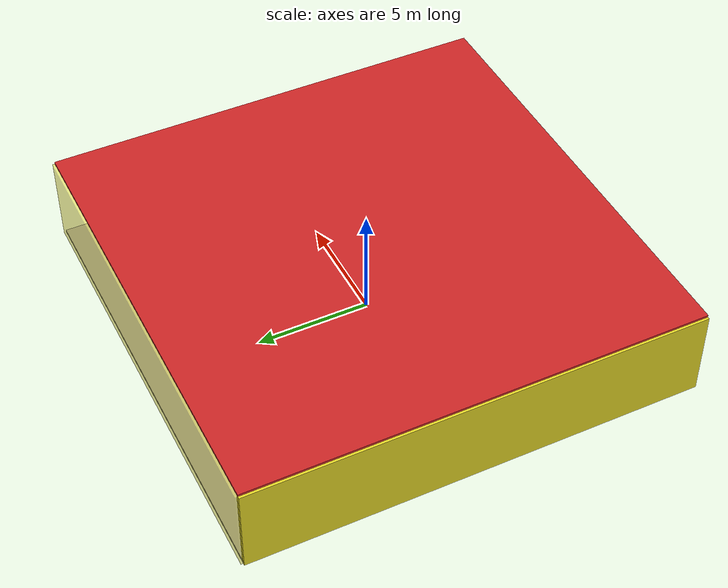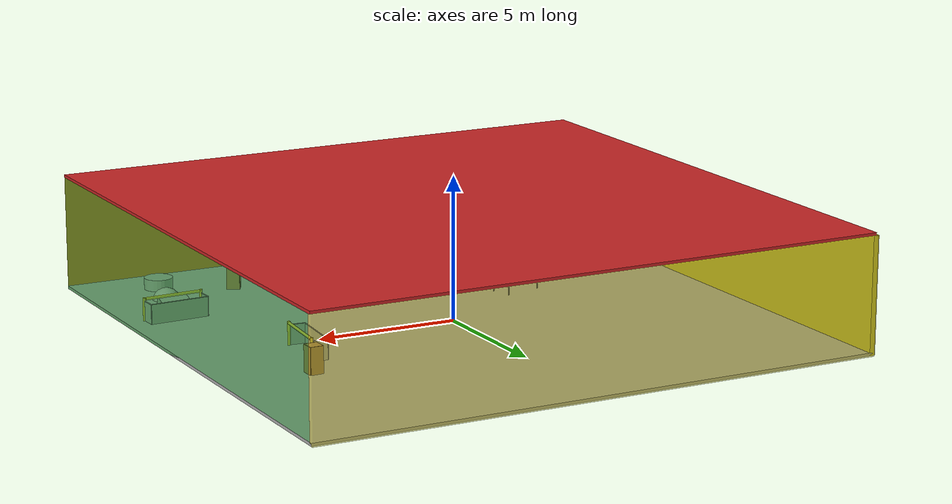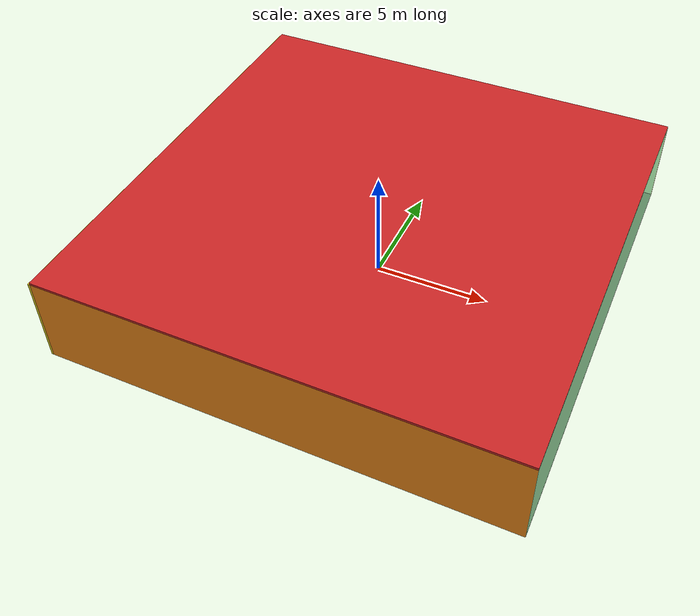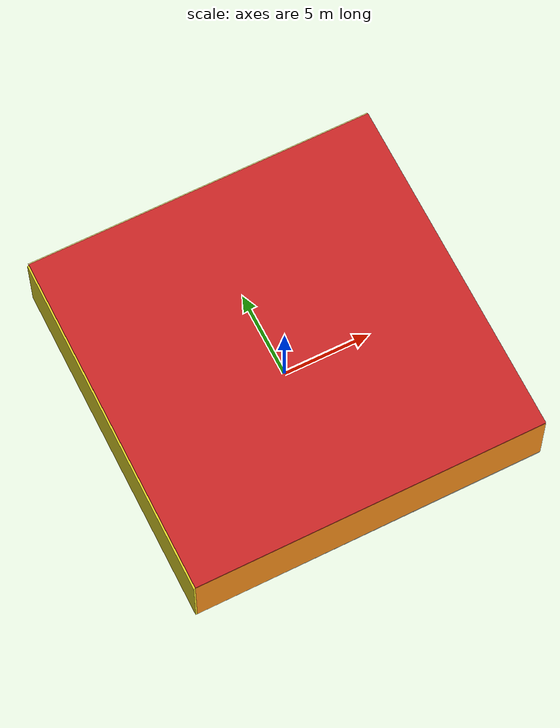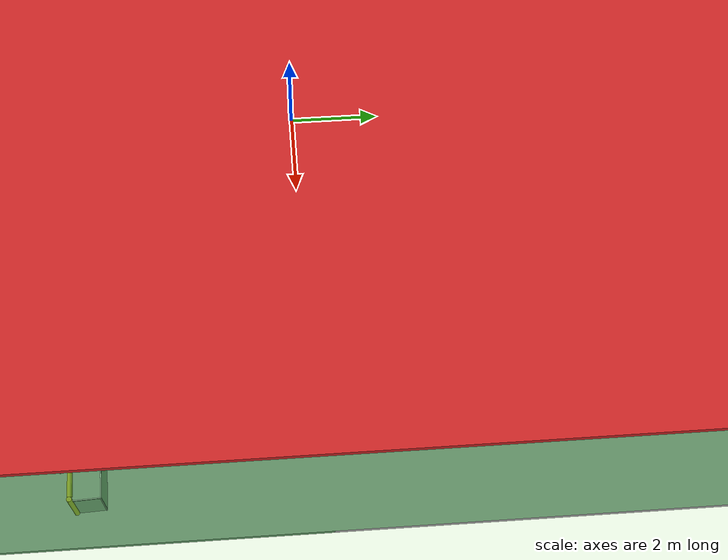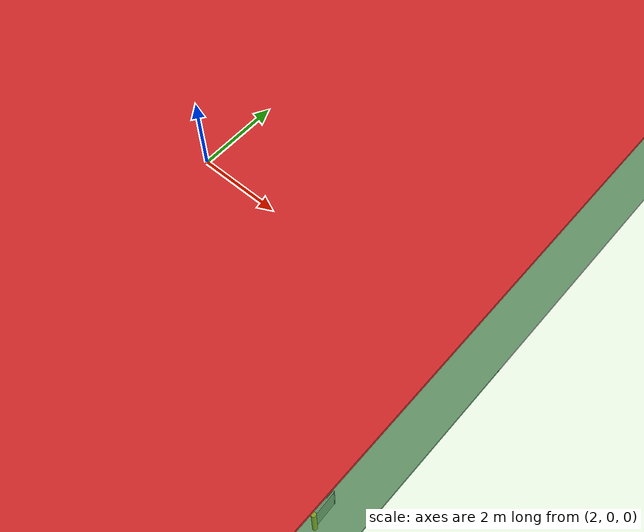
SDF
<sdf version="1.4">
 <world name="default">
  <physics type="ode">
   <max_step_size>0.001</max_step_size>
   <real_time_factor>1</real_time_factor>
   <real_time_update_rate>1000</real_time_update_rate>
   <gravity>0 0 -9.8</gravity>
  </physics>
  <scene><ambient>0.4 0.4 0.4 1</ambient><background>0.7 0.7 0.7 1</background><shadows>1</shadows></scene>
  <model name="Surrounding">
   <static>1</static>
   <link name="Ceiling">
    <collision name="Ceiling_Collision"><geometry><box><size>20 20 0.1</size></box></geometry></collision>
    <visual name="Ceiling_Visual">
     <geometry><box><size>20 20 0.1</size></box></geometry>
     <material>
      <script><uri>file://media/materials/scripts/gazebo.material</uri><name>Gazebo/RedBright</name></script>
     </material>
    </visual>
    <pose>0 0 4.05 0 0 0</pose>
   </link>
   <link name="Wall_South">
    <collision name="Wall_South_Collision">
     <geometry><box><size>20 0 4</size></box></geometry>
     <pose>0 0 2 0 -0 0</pose>
    </collision>
    <visual name="Wall_South_Visual">
     <pose>0 0 2 0 -0 0</pose>
     <geometry><box><size>20 0 4</size></box></geometry>
     <material>
      <script><uri>file://media/materials/scripts/gazebo.material</uri><name>Gazebo/Orange</name></script>
     </material>
    </visual>
    <velocity_decay><linear>0</linear><angular>0</angular></velocity_decay>
    <pose>0 -10 0 0 -0 0</pose>
   </link>
   <link name="Wall_East">
    <collision name="Wall_21_Collision">
     <geometry><box><size>20 0 4</size></box></geometry>
     <pose>0 0 2 0 -0 0</pose>
    </collision>
    <visual name="Wall_21_Visual">
     <pose>0 0 2 0 -0 0</pose>
     <geometry><box><size>20 0 4</size></box></geometry>
     <material>
      <script><uri>file://media/materials/scripts/gazebo.material</uri><name>Gazebo/GreenTransparent</name></script>
     </material>
    </visual>
    <velocity_decay><linear>0</linear><angular>0</angular></velocity_decay>
    <pose>10 0 0 0 -0 1.5708</pose>
   </link>
   <link name="Wall_North">
    <collision name="Wall_22_Collision">
     <geometry><box><size>20 0.2 4</size></box></geometry>
     <pose>0 0 2 0 -0 0</pose>
    </collision>
    <visual name="Wall_22_Visual">
     <pose>0 0 2 0 -0 0</pose>
     <geometry><box><size>20 0.2 4</size></box></geometry>
     <material>
      <script>
       <uri>file://media/materials/scripts/gazebo.material</uri>
       <name>Gazebo/YellowTransparent</name>
      </script>
     </material>
    </visual>
    <velocity_decay><linear>0</linear><angular>0</angular></velocity_decay>
    <pose>0 10 0 0 -0 0</pose>
   </link>
   <link name="Wall_West">
    <collision name="Wall_23_Collision">
     <geometry><box><size>20 0.2 4</size></box></geometry>
     <pose>0 0 2 0 -0 0</pose>
    </collision>
    <visual name="Wall_23_Visual">
     <pose>0 0 2 0 -0 0</pose>
     <geometry><box><size>20 0.2 4</size></box></geometry>
     <material>
      <script><uri>file://media/materials/scripts/gazebo.material</uri><name>Gazebo/YellowGlow</name></script>
     </material>
    </visual>
    <velocity_decay><linear>0</linear><angular>0</angular></velocity_decay>
    <pose>-10 0 0 0 0 -1.5708</pose>
   </link>
   <link name="Ground_link">
    <collision name="collision">
     <pose>0 0 .05 0 -0 0</pose>
     <geometry><box><size>20 20 0.1</size></box></geometry>
    </collision>
    <visual name="visual">
     <pose>0 0 .05 0 -0 0</pose>
     <geometry><box><size>20 20 0.1</size></box></geometry>
     <material>
      <script><uri>file://media/materials/scripts/gazebo.material</uri><name>Gazebo/JointAnchor</name></script>
     </material>
    </visual>
   </link>
   <static>1</static>
  </model>
  <spherical_coordinates>
   <surface_model>EARTH_WGS84</surface_model>
   <latitude_deg>0</latitude_deg>
   <longitude_deg>0</longitude_deg>
   <elevation>0</elevation>
   <heading_deg>0</heading_deg>
  </spherical_coordinates>
  <light name="lightball_0" type="diffuse">
   <diffuse>0.8 0.8 0.8 1</diffuse>
   <specular>0.2 0.2 0.2 1</specular>
   <attenuation>
    <range>100</range>
    <constant>0.7</constant>
    <linear>0.01</linear>
    <quadratic>0.001</quadratic>
   </attenuation>
   <direction>-0.5 0.1 -0.9</direction>
   <pose>7.65104796799 2.80985404578 2.93827275237 0 0 0</pose>
  </light>
  <light name="lightball_1" type="diffuse">
   <diffuse>0.8 0.8 0.8 1</diffuse>
   <specular>0.2 0.2 0.2 1</specular>
   <attenuation>
    <range>100</range>
    <constant>0.7</constant>
    <linear>0.01</linear>
    <quadratic>0.001</quadratic>
   </attenuation>
   <direction>-0.5 0.1 -0.9</direction>
   <pose>-1.60511990927 -6.7948860983 2.7699049013 0 0 0</pose>
  </light>
  <light name="lightball_2" type="diffuse">
   <diffuse>0.8 0.8 0.8 1</diffuse>
   <specular>0.2 0.2 0.2 1</specular>
   <attenuation>
    <range>100</range>
    <constant>0.7</constant>
    <linear>0.01</linear>
    <quadratic>0.001</quadratic>
   </attenuation>
   <direction>-0.5 0.1 -0.9</direction>
   <pose>0.12598382084 9.44021381682 3.86880314396 0 0 0</pose>
  </light>
  <light name="lightball_3" type="diffuse">
   <diffuse>0.8 0.8 0.8 1</diffuse>
   <specular>0.2 0.2 0.2 1</specular>
   <attenuation>
    <range>100</range>
    <constant>0.7</constant>
    <linear>0.01</linear>
    <quadratic>0.001</quadratic>
   </attenuation>
   <direction>-0.5 0.1 -0.9</direction>
   <pose>-4.29184582371 -3.52689833806 3.4112041711 0 0 0</pose>
  </light>
  <light name="lightball_4" type="diffuse">
   <diffuse>0.8 0.8 0.8 1</diffuse>
   <specular>0.2 0.2 0.2 1</specular>
   <attenuation>
    <range>100</range>
    <constant>0.7</constant>
    <linear>0.01</linear>
    <quadratic>0.001</quadratic>
   </attenuation>
   <direction>-0.5 0.1 -0.9</direction>
   <pose>-5.70826386226 0.483161637064 2.9633613499 0 0 0</pose>
  </light>
  <light name="lightball_5" type="diffuse">
   <diffuse>0.8 0.8 0.8 1</diffuse>
   <specular>0.2 0.2 0.2 1</specular>
   <attenuation>
    <range>100</range>
    <constant>0.7</constant>
    <linear>0.01</linear>
    <quadratic>0.001</quadratic>
   </attenuation>
   <direction>-0.5 0.1 -0.9</direction>
   <pose>-5.97200012121 -6.39431455262 0.72897501232 0 0 0</pose>
  </light>
  <light name="lightball_6" type="diffuse">
   <diffuse>0.8 0.8 0.8 1</diffuse>
   <specular>0.2 0.2 0.2 1</specular>
   <attenuation>
    <range>100</range>
    <constant>0.7</constant>
    <linear>0.01</linear>
    <quadratic>0.001</quadratic>
   </attenuation>
   <direction>-0.5 0.1 -0.9</direction>
   <pose>-3.06469692279 6.17042052911 2.28748630944 0 0 0</pose>
  </light>
  <light name="lightball_7" type="diffuse">
   <diffuse>0.8 0.8 0.8 1</diffuse>
   <specular>0.2 0.2 0.2 1</specular>
   <attenuation>
    <range>100</range>
    <constant>0.7</constant>
    <linear>0.01</linear>
    <quadratic>0.001</quadratic>
   </attenuation>
   <direction>-0.5 0.1 -0.9</direction>
   <pose>2.84830224716 -8.26289054064 3.44338059469 0 0 0</pose>
  </light>
  <light name="lightball_8" type="diffuse">
   <diffuse>0.8 0.8 0.8 1</diffuse>
   <specular>0.2 0.2 0.2 1</specular>
   <attenuation>
    <range>100</range>
    <constant>0.7</constant>
    <linear>0.01</linear>
    <quadratic>0.001</quadratic>
   </attenuation>
   <direction>-0.5 0.1 -0.9</direction>
   <pose>-8.04943912805 4.06216767147 3.38514690623 0 0 0</pose>
  </light>
  <light name="lightball_9" type="diffuse">
   <diffuse>0.8 0.8 0.8 1</diffuse>
   <specular>0.2 0.2 0.2 1</specular>
   <attenuation>
    <range>100</range>
    <constant>0.7</constant>
    <linear>0.01</linear>
    <quadratic>0.001</quadratic>
   </attenuation>
   <direction>-0.5 0.1 -0.9</direction>
   <pose>-1.02682711156 -8.16274316954 1.33426760655 0 0 0</pose>
  </light>
  <light name="lightball_10" type="diffuse">
   <diffuse>0.8 0.8 0.8 1</diffuse>
   <specular>0.2 0.2 0.2 1</specular>
   <attenuation>
    <range>100</range>
    <constant>0.7</constant>
    <linear>0.01</linear>
    <quadratic>0.001</quadratic>
   </attenuation>
   <direction>-0.5 0.1 -0.9</direction>
   <pose>-2.81917663201 6.60066315764 2.76880744546 0 0 0</pose>
  </light>
  <light name="lightball_11" type="diffuse">
   <diffuse>0.8 0.8 0.8 1</diffuse>
   <specular>0.2 0.2 0.2 1</specular>
   <attenuation>
    <range>100</range>
    <constant>0.7</constant>
    <linear>0.01</linear>
    <quadratic>0.001</quadratic>
   </attenuation>
   <direction>-0.5 0.1 -0.9</direction>
   <pose>-4.83435227079 6.86873245423 1.49438605462 0 0 0</pose>
  </light>
  <light name="lightball_12" type="diffuse">
   <diffuse>0.8 0.8 0.8 1</diffuse>
   <specular>0.2 0.2 0.2 1</specular>
   <attenuation>
    <range>100</range>
    <constant>0.7</constant>
    <linear>0.01</linear>
    <quadratic>0.001</quadratic>
   </attenuation>
   <direction>-0.5 0.1 -0.9</direction>
   <pose>-1.87645855494 -9.02712291649 1.73556297806 0 0 0</pose>
  </light>
  <light name="lightball_13" type="diffuse">
   <diffuse>0.8 0.8 0.8 1</diffuse>
   <specular>0.2 0.2 0.2 1</specular>
   <attenuation>
    <range>100</range>
    <constant>0.7</constant>
    <linear>0.01</linear>
    <quadratic>0.001</quadratic>
   </attenuation>
   <direction>-0.5 0.1 -0.9</direction>
   <pose>9.48632374037 6.67084866034 0.636480512444 0 0 0</pose>
  </light>
  <include><uri>model://cabinet</uri><pose>-5.58592502801 -7.85763152556 0 0 0 0.942995359618</pose></include>
  <include><uri>model://table</uri><pose>-3.61397452859 -2.20349013466 0 0 0 0.254174380282</pose></include>
  <include><uri>model://cabinet</uri><pose>4.98059858682 -7.04541841635 0 0 0 2.65743032797</pose></include>
  <include>
   <uri>model://textured_shapes</uri>
   <pose>7.61895122322 -6.77338581299 0 0 0 2.93676845922</pose>
  </include>
  <include>
   <uri>model://robocup_3Dsim_goal</uri>
   <pose>8.27409237677 -4.60496283735 0 0 0 1.61498328734</pose>
  </include>
  <include>
   <uri>model://robocup_3Dsim_goal</uri>
   <pose>6.34518421112 1.40855937767 0 0 0 3.06104397613</pose>
  </include>
  <include><uri>model://cabinet</uri><pose>6.88271802055 3.58401992059 0 0 0 0.0291189559056</pose></include>
 </world>
</sdf>

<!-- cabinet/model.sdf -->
<sdf version="1.5">
  <model name="cabinet">
    <static>true</static>
    <link name="cabinet_bottom_plate">
      <inertial>
        <pose>0 0 -1 0 0 0</pose>
        <inertia>
          <ixx>2.050000</ixx>
          <ixy>0</ixy>
          <ixz>0</ixz>
          <iyy>2.050000</iyy>
          <iyz>0</iyz>
          <izz>2.050000</izz>
        </inertia>
        <mass>25.000000</mass>
      </inertial>
      <collision name="cabinet_bottom_plate_geom">
        <pose>0 0 0.010000 0 0 0</pose>
        <geometry>
          <box>
            <size>0.450000 0.450000 0.020000</size>
          </box>
        </geometry>
      </collision>
      <visual name="cabinet_bottom_plate_geom_visual">
        <pose>0 0 0.010000 0 0 0</pose>
        <geometry>
          <box>
            <size>0.450000 0.450000 0.020000</size>
          </box>
        </geometry>
        <material>
          <script>
            <uri>model://media/materials/scripts/gazebo.material</uri>
            <name>Gazebo/Wood</name>
          </script>
        </material>
      </visual>
      <collision name="cabinet_bottom_plate_geom_cabinet_back_plate">
        <pose>0.235000 0 0.510000 0 0 0</pose>
        <geometry>
          <box>
            <size>0.020000 0.450000 1.020000</size>
          </box>
        </geometry>
      </collision>
      <visual name="cabinet_bottom_plate_geom_cabinet_back_plate_visual">
        <pose>0.235000 0 0.510000 0 0 0</pose>
        <geometry>
          <box>
            <size>0.020000 0.450000 1.020000</size>
          </box>
        </geometry>
        <material>
          <script>
            <uri>model://media/materials/scripts/gazebo.material</uri>
            <name>Gazebo/Wood</name>
          </script>
        </material>
      </visual>
      <collision name="cabinet_bottom_plate_geom_cabinet_left_plate">
        <pose>0 0.235000 0.510000 0 0 0</pose>
        <geometry>
          <box>
            <size>0.450000 0.020000 1.020000</size>
          </box>
        </geometry>
      </collision>
      <visual name="cabinet_bottom_plate_geom_cabinet_left_plate_visual">
        <pose>0 0.235000 0.510000 0 0 0</pose>
        <geometry>
          <box>
            <size>0.450000 0.020000 1.020000</size>
          </box>
        </geometry>
        <material>
          <script>
            <uri>model://media/materials/scripts/gazebo.material</uri>
            <name>Gazebo/Wood</name>
          </script>
        </material>
      </visual>
      <collision name="cabinet_bottom_plate_geom_cabinet_middle_plate">
        <pose>0 0 0.510000 0 0 0</pose>
        <geometry>
          <box>
            <size>0.450000 0.450000 0.020000</size>
          </box>
        </geometry>
      </collision>
      <visual name="cabinet_bottom_plate_geom_cabinet_middle_plate_visual">
        <pose>0 0 0.510000 0 0 0</pose>
        <geometry>
          <box>
            <size>0.450000 0.450000 0.020000</size>
          </box>
        </geometry>
        <material>
          <script>
            <uri>model://media/materials/scripts/gazebo.material</uri>
            <name>Gazebo/Wood</name>
          </script>
        </material>
      </visual>
      <collision name="cabinet_bottom_plate_geom_cabinet_right_plate">
        <pose>0 -0.235000 0.510000 0 0 0</pose>
        <geometry>
          <box>
            <size>0.450000 0.020000 1.020000</size>
          </box>
        </geometry>
      </collision>
      <visual name="cabinet_bottom_plate_geom_cabinet_right_plate_visual">
        <pose>0 -0.235000 0.510000 0 0 0</pose>
        <geometry>
          <box>
            <size>0.450000 0.020000 1.020000</size>
          </box>
        </geometry>
        <material>
          <script>
            <uri>model://media/materials/scripts/gazebo.material</uri>
            <name>Gazebo/Wood</name>
          </script>
        </material>
      </visual>
      <collision name="cabinet_bottom_plate_geom_cabinet_top_plate">
        <pose>0 0 1.010000 0 0 0</pose>
        <geometry>
          <box>
            <size>0.450000 0.450000 0.020000</size>
          </box>
        </geometry>
      </collision>
      <visual name="cabinet_bottom_plate_geom_cabinet_top_plate_visual">
        <pose>0 0 1.010000 0 0 0</pose>
        <geometry>
          <box>
            <size>0.450000 0.450000 0.020000</size>
          </box>
        </geometry>
        <material>
          <script>
            <uri>model://media/materials/scripts/gazebo.material</uri>
            <name>Gazebo/Wood</name>
          </script>
        </material>
      </visual>
    </link>
  </model>
</sdf>

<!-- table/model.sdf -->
<sdf version="1.5">
  <model name="table">
    <static>true</static>
    <link name="link">
      <collision name="surface">
        <pose>0 0 1.0 0 0 0</pose>
        <geometry>
          <box>
            <size>1.5 0.8 0.03</size>
          </box>
        </geometry>
        <surface>
          <friction>
            <ode>
              <mu>0.6</mu>
              <mu2>0.6</mu2>
            </ode>
          </friction>
        </surface>
      </collision>
      <visual name="visual1">
        <pose>0 0 1.0 0 0 0</pose>
        <geometry>
          <box>
            <size>1.5 0.8 0.03</size>
          </box>
        </geometry>
        <material>
          <script>
            <uri>model://media/materials/scripts/gazebo.material</uri>
            <name>Gazebo/Wood</name>
          </script>
        </material>
      </visual>
      <collision name="front_left_leg">
        <pose>0.68 0.38 0.5 0 0 0</pose>
        <geometry>
          <cylinder>
            <radius>0.02</radius>
            <length>1.0</length>
          </cylinder>
        </geometry>
      </collision>
      <visual name="front_left_leg">
        <pose>0.68 0.38 0.5 0 0 0</pose>
        <geometry>
          <cylinder>
            <radius>0.02</radius>
            <length>1.0</length>
          </cylinder>
        </geometry>
        <material>
          <script>
            <uri>model://media/materials/scripts/gazebo.material</uri>
            <name>Gazebo/Grey</name>
          </script>
        </material>
      </visual>
      <collision name="front_right_leg">
        <pose>0.68 -0.38 0.5 0 0 0</pose>
        <geometry>
          <cylinder>
            <radius>0.02</radius>
            <length>1.0</length>
          </cylinder>
        </geometry>
      </collision>
      <visual name="front_right_leg">
        <pose>0.68 -0.38 0.5 0 0 0</pose>
        <geometry>
          <cylinder>
            <radius>0.02</radius>
            <length>1.0</length>
          </cylinder>
        </geometry>
        <material>
          <script>
            <uri>model://media/materials/scripts/gazebo.material</uri>
            <name>Gazebo/Grey</name>
          </script>
        </material>
      </visual>
      <collision name="back_right_leg">
        <pose>-0.68 -0.38 0.5 0 0 0</pose>
        <geometry>
          <cylinder>
            <radius>0.02</radius>
            <length>1.0</length>
          </cylinder>
        </geometry>
      </collision>
      <visual name="back_right_leg">
        <pose>-0.68 -0.38 0.5 0 0 0</pose>
        <geometry>
          <cylinder>
            <radius>0.02</radius>
            <length>1.0</length>
          </cylinder>
        </geometry>
        <material>
          <script>
            <uri>model://media/materials/scripts/gazebo.material</uri>
            <name>Gazebo/Grey</name>
          </script>
        </material>
      </visual>
      <collision name="back_left_leg">
        <pose>-0.68 0.38 0.5 0 0 0</pose>
        <geometry>
          <cylinder>
            <radius>0.02</radius>
            <length>1.0</length>
          </cylinder>
        </geometry>
      </collision>
      <visual name="back_left_leg">
        <pose>-0.68 0.38 0.5 0 0 0</pose>
        <geometry>
          <cylinder>
            <radius>0.02</radius>
            <length>1.0</length>
          </cylinder>
        </geometry>
        <material>
          <script>
            <uri>model://media/materials/scripts/gazebo.material</uri>
            <name>Gazebo/Grey</name>
          </script>
        </material>
      </visual>
    </link>
  </model>
</sdf>

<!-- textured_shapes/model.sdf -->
<sdf version="1.6">
  <model name="textured_shapes">
    <pose>0 0 0.5 0 0 0</pose>
    <link name="box">
      <pose>0 -1.5 0 0 0 0</pose>
      <collision name="collision">
        <geometry>
          <box>
            <size>1 1 1</size>
          </box>
        </geometry>
      </collision>
      <visual name="visual">
        <geometry>
          <box>
            <size>1 1 1</size>
          </box>
        </geometry>
        <material>
          <script>
            <uri>model://../model_source/models/textured_shapes/materials/scripts</uri>
            <uri>model://../model_source/models/textured_shapes/materials/textures</uri>
            <name>TexturedShape/Squares</name>
          </script>
        </material>
      </visual>
    </link>
    <link name="sphere">
      <collision name="collision">
        <geometry>
          <sphere>
            <radius>0.5</radius>
          </sphere>
        </geometry>
      </collision>
      <visual name="visual">
        <geometry>
          <sphere>
            <radius>0.5</radius>
          </sphere>
        </geometry>
        <material>
          <script>
            <uri>model://../model_source/models/textured_shapes/materials/scripts</uri>
            <uri>model://../model_source/models/textured_shapes/materials/textures</uri>
            <name>TexturedShape/Squares</name>
          </script>
        </material>
      </visual>
    </link>
    <link name="cylinder">
      <pose>0 1.5 0 0 0 0</pose>
      <collision name="collision">
        <geometry>
          <cylinder>
            <radius>0.5</radius>
            <length>1</length>
          </cylinder>
        </geometry>
      </collision>
      <visual name="visual">
        <geometry>
          <cylinder>
            <radius>0.5</radius>
            <length>1</length>
          </cylinder>
        </geometry>
        <material>
          <script>
            <uri>model://../model_source/models/textured_shapes/materials/scripts</uri>
            <uri>model://../model_source/models/textured_shapes/materials/textures</uri>
            <name>TexturedShape/Squares</name>
          </script>
        </material>
      </visual>
    </link>
  </model>
</sdf>

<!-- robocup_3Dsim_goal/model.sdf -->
<sdf version="1.5">
  <model name="robocup_3d_goal">
    <static>true</static>
    <link name="left_post">
      <pose>0 1.05 0.45 0 0 0</pose>
      <collision name="collision">
        <geometry>
          <cylinder>
            <radius>0.05</radius>
            <length>0.9</length>
          </cylinder>
        </geometry>
      </collision>
      <visual name="visual">
        <geometry>
          <cylinder>
            <radius>0.05</radius>
            <length>0.9</length>
          </cylinder>
        </geometry>
        <material>
          <script>
            <uri>file://media/materials/scripts/gazebo.material</uri>
            <name>Gazebo/ZincYellow</name>
          </script>
        </material>
      </visual>
    </link>
    <link name="left_support_horiz_lower">
      <pose>0.30 1.05 0.01 0 0 0</pose>
      <collision name="collision">
        <geometry>
          <box>
            <size>0.50 0.02 0.02</size>
          </box>
        </geometry>
      </collision>
      <visual name="visual">
        <geometry>
          <box>
            <size>0.50 0.02 0.02</size>
          </box>
        </geometry>
        <material>
          <script>
            <uri>file://media/materials/scripts/gazebo.material</uri>
            <name>Gazebo/White</name>
          </script>
        </material>
      </visual>
    </link>
    <link name="left_support_horiz_upper">
      <pose>0.30 1.05 0.79 0 0 0</pose>
      <collision name="collision">
        <geometry>
          <box>
            <size>0.50 0.02 0.02</size>
          </box>
        </geometry>
      </collision>
      <visual name="visual">
        <geometry>
          <box>
            <size>0.50 0.02 0.02</size>
          </box>
        </geometry>
        <material>
          <script>
            <uri>file://media/materials/scripts/gazebo.material</uri>
            <name>Gazebo/White</name>
          </script>
        </material>
      </visual>
    </link>
    <link name="left_support_vertical">
      <pose>0.56 1.05 0.4 0 1.5708 0</pose>
      <collision name="collision">
        <geometry>
          <box>
            <size>0.80 0.02 0.02</size>
          </box>
        </geometry>
      </collision>
      <visual name="visual">
        <geometry>
          <box>
            <size>0.80 0.02 0.02</size>
          </box>
        </geometry>
        <material>
          <script>
            <uri>file://media/materials/scripts/gazebo.material</uri>
            <name>Gazebo/White</name>
          </script>
        </material>
      </visual>
    </link>
    <link name="right_support_horiz_lower">
      <pose>0.30 -1.05 0.01 0 0 0</pose>
      <collision name="collision">
        <geometry>
          <box>
            <size>0.50 0.02 0.02</size>
          </box>
        </geometry>
      </collision>
      <visual name="visual">
        <geometry>
          <box>
            <size>0.50 0.02 0.02</size>
          </box>
        </geometry>
        <material>
          <script>
            <uri>file://media/materials/scripts/gazebo.material</uri>
            <name>Gazebo/White</name>
          </script>
        </material>
      </visual>
    </link>
    <link name="right_support_horiz_upper">
      <pose>0.30 -1.05 0.79 0 0 0</pose>
      <collision name="collision">
        <geometry>
          <box>
            <size>0.50 0.02 0.02</size>
          </box>
        </geometry>
      </collision>
      <visual name="visual">
        <geometry>
          <box>
            <size>0.50 0.02 0.02</size>
          </box>
        </geometry>
        <material>
          <script>
            <uri>file://media/materials/scripts/gazebo.material</uri>
            <name>Gazebo/White</name>
          </script>
        </material>
      </visual>
    </link>
    <link name="right_support_vertical">
      <pose>0.56 -1.05 0.4 0 1.5708 0</pose>
      <collision name="collision">
        <geometry>
          <box>
            <size>0.80 0.02 0.02</size>
          </box>
        </geometry>
      </collision>
      <visual name="visual">
        <geometry>
          <box>
            <size>0.80 0.02 0.02</size>
          </box>
        </geometry>
        <material>
          <script>
            <uri>file://media/materials/scripts/gazebo.material</uri>
            <name>Gazebo/White</name>
          </script>
        </material>
      </visual>
    </link>
    <link name="center_support_horiz_lower">
      <pose>0.56 0 0.01 0 1.5708 0</pose>
      <collision name="collision">
        <geometry>
          <box>
            <size>0.02 2.08 0.02</size>
          </box>
        </geometry>
      </collision>
      <visual name="visual">
        <geometry>
          <box>
            <size>0.02 2.08 0.02</size>
          </box>
        </geometry>
        <material>
          <script>
            <uri>file://media/materials/scripts/gazebo.material</uri>
            <name>Gazebo/White</name>
          </script>
        </material>
      </visual>
    </link>
    <link name="center_support_horiz_upper">
      <pose>0.56 0 0.79 0 1.5708 0</pose>
      <collision name="collision">
        <geometry>
          <box>
            <size>0.02 2.08 0.02</size>
          </box>
        </geometry>
      </collision>
      <visual name="visual">
        <geometry>
          <box>
            <size>0.02 2.08 0.02</size>
          </box>
        </geometry>
        <material>
          <script>
            <uri>file://media/materials/scripts/gazebo.material</uri>
            <name>Gazebo/White</name>
          </script>
        </material>
      </visual>
    </link>
    <link name="right_post">
      <pose>0 -1.05 0.45 0 0 0</pose>
      <collision name="collision">
        <geometry>
          <cylinder>
            <radius>0.05</radius>
            <length>0.9</length>
          </cylinder>
        </geometry>
      </collision>
      <visual name="visual">
        <geometry>
          <cylinder>
            <radius>0.05</radius>
            <length>0.9</length>
          </cylinder>
        </geometry>
        <material>
          <script>
            <uri>file://media/materials/scripts/gazebo.material</uri>
            <name>Gazebo/ZincYellow</name>
          </script>
        </material>
      </visual>
    </link>
    <link name="crossbar">
      <pose>0 0 0.85 1.57 1.57 0</pose>
      <collision name="collision">
        <geometry>
          <cylinder>
            <radius>0.05</radius>
            <length>2.0</length>
          </cylinder>
        </geometry>
      </collision>
      <visual name="visual">
        <geometry>
          <cylinder>
            <radius>0.05</radius>
            <length>2.0</length>
          </cylinder>
        </geometry>
        <material>
          <script>
            <uri>file://media/materials/scripts/gazebo.material</uri>
            <name>Gazebo/ZincYellow</name>
          </script>
        </material>
      </visual>
    </link>
    <link name="center_net">
      <pose>0.56 0 0.40 0 0 0</pose>
      <collision name="collision">
        <geometry>
          <box>
            <size>0.01 2.1 0.80</size>
          </box>
        </geometry>
      </collision>
      <visual name="visual">
        <geometry>
          <box>
            <size>0.01 2.1 0.80</size>
          </box>
        </geometry>
        <material>
          <script>
            <uri>model://../model_source/models/robocup09_spl_field/materials/scripts/</uri>
            <uri>model://../model_source/models/robocup09_spl_field/materials/textures/</uri>
            <name>RoboCup/Net</name>
          </script>
        </material>
      </visual>
    </link>
    <link name="left_net">
      <pose>0.30 1.05 0.40 0 0 0</pose>
      <collision name="collision">
        <geometry>
          <box>
            <size>0.50 0.01 0.76</size>
          </box>
        </geometry>
      </collision>
      <visual name="visual">
        <geometry>
          <box>
            <size>0.50 0.01 0.76</size>
          </box>
        </geometry>
        <material>
          <script>
            <uri>model://../model_source/models/robocup09_spl_field/materials/scripts/</uri>
            <uri>model://../model_source/models/robocup09_spl_field/materials/textures/</uri>
            <name>RoboCup/Net</name>
          </script>
        </material>
      </visual>
    </link>
    <link name="right_net">
      <pose>0.30 -1.05 0.40 0 0 0</pose>
      <collision name="collision">
        <geometry>
          <box>
            <size>0.50 0.01 0.76</size>
          </box>
        </geometry>
      </collision>
      <visual name="visual">
        <geometry>
          <box>
            <size>0.50 0.01 0.76</size>
          </box>
        </geometry>
        <material>
          <script>
            <uri>model://../model_source/models/robocup09_spl_field/materials/scripts/</uri>
            <uri>model://../model_source/models/robocup09_spl_field/materials/textures/</uri>
            <name>RoboCup/Net</name>
          </script>
        </material>
      </visual>
    </link>
  </model>
</sdf>
